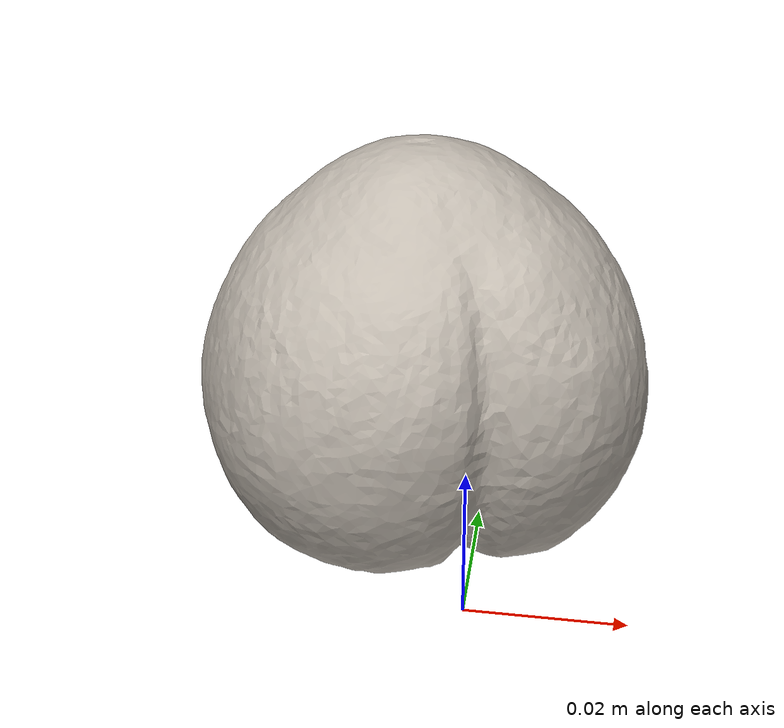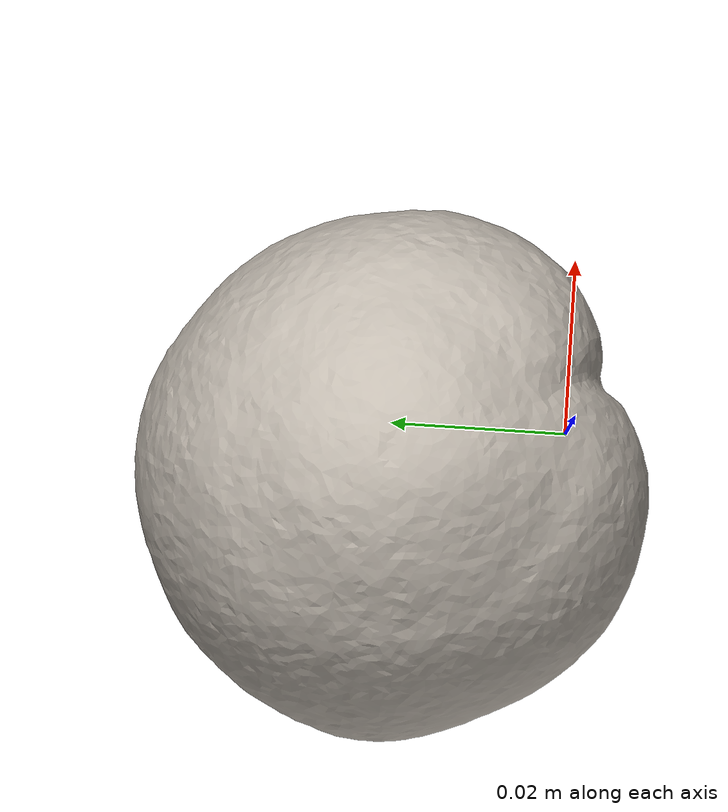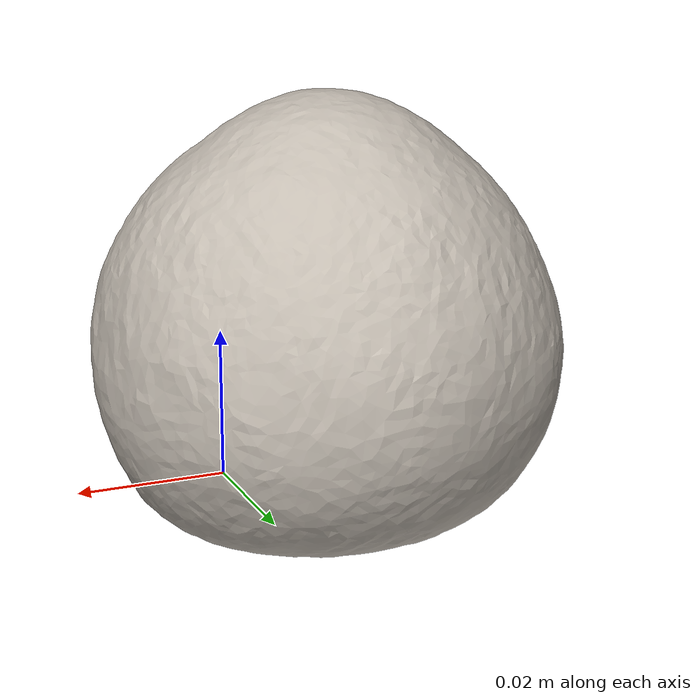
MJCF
<mujoco model="plum">
  <compiler angle="radian" meshdir="assets" texturedir="assets"/>
    <default>
        <default class="ycb_col">
            <geom contype="1" conaffinity="1" group="3" rgba=".4 .5 .6 1"/>
        </default>
        <default class="ycb_viz">
            <geom contype="0" conaffinity="0" type="mesh" mass="0"/>
        </default>
    </default>
  <asset>
    <texture type="2d" name="plum_tex" file="texture_map.png"/>
    <material name="plum_mat" texture="plum_tex" specular="0.5" shininess="0.5"/>
    <mesh file="textured.obj" name="plum"/>
    <mesh file="textured_collision_0.obj" name="plum_collision_0"/>
  </asset>
  <worldbody>
      <geom class="ycb_viz" material="plum_mat" mesh="plum"/>
      <geom class="ycb_col" mesh="plum_collision_0" conaffinity="1" condim="4" friction="0.1 0.1 0.1" mass="0.02499999999999999" rgba="1 1 1 1" solimp="0.99 0.99 0.01" solref=".001 0.1" type="mesh" group="3"/>
  </worldbody>
</mujoco>
